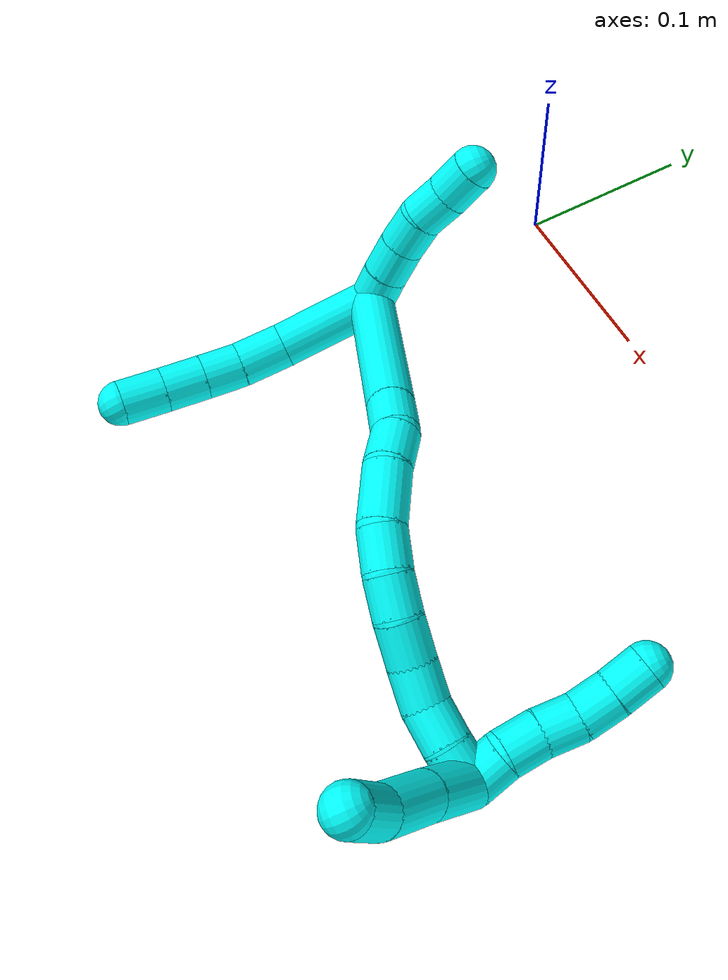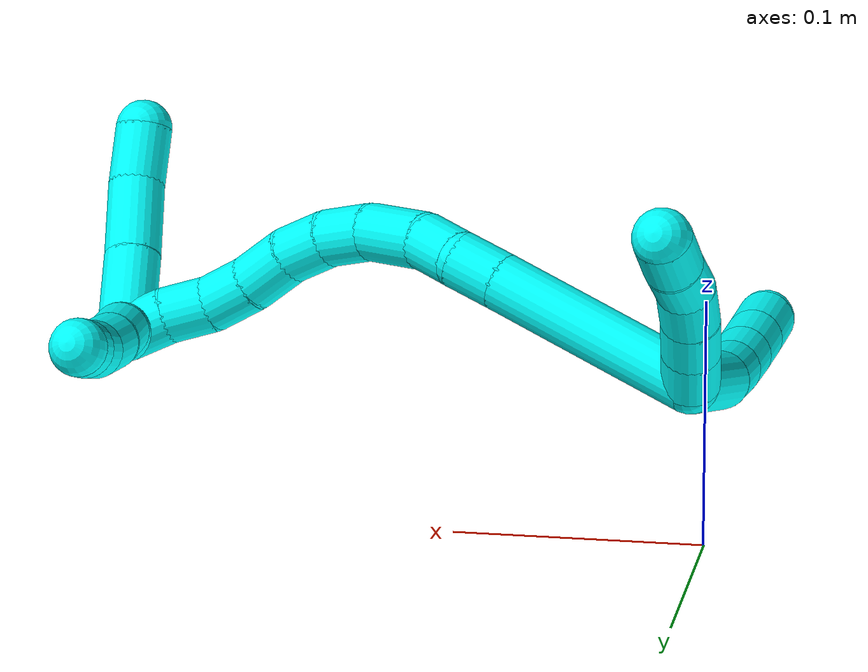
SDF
<sdf version="1.7">
 <world name="default">
  <model name="3">
   <static>0</static>
   <link name="3">
    <collision name="collision-cylinder-e_1_2_8">
     <pose>0.002585 0.004782 0.027011 -0.175232 0.093973 -0.008261</pose>
     <geometry><cylinder><radius>0.0125</radius><length>0.055106</length></cylinder></geometry>
     <surface>
      <friction><ode><mu>1.16</mu><mu2>1.16</mu2><slip1>0</slip1><slip2>0</slip2></ode></friction>
      <contact><ode><kp>1e+06</kp><kd>1</kd><max_vel>0</max_vel><min_depth>0.001</min_depth></ode></contact>
     </surface>
    </collision>
    <visual name="visual-cylinder-e_1_2_8">
     <pose>0.002585 0.004782 0.027011 -0.175232 0.093973 -0.008261</pose>
     <geometry><cylinder><radius>0.0125</radius><length>0.055106</length></cylinder></geometry>
     <material><ambient>0.003922 1 0.996078 1</ambient></material>
    </visual>
    <collision name="collision-cylinder-e_2_8_9">
     <pose>0.007182 0.013739 0.066417 -0.32485 0.152571 -0.025049</pose>
     <geometry><cylinder><radius>0.0125</radius><length>0.026464</length></cylinder></geometry>
     <surface>
      <friction><ode><mu>1.16</mu><mu2>1.16</mu2><slip1>0</slip1><slip2>0</slip2></ode></friction>
      <contact><ode><kp>1e+06</kp><kd>1</kd><max_vel>0</max_vel><min_depth>0.001</min_depth></ode></contact>
     </surface>
    </collision>
    <visual name="visual-cylinder-e_2_8_9">
     <pose>0.007182 0.013739 0.066417 -0.32485 0.152571 -0.025049</pose>
     <geometry><cylinder><radius>0.0125</radius><length>0.026464</length></cylinder></geometry>
     <material><ambient>0.003922 1 0.996078 1</ambient></material>
    </visual>
    <collision name="collision-cylinder-e_3_9_10">
     <pose>0.01038 0.02252 0.088375 -0.448943 0.111352 -0.025449</pose>
     <geometry><cylinder><radius>0.0125</radius><length>0.021363</length></cylinder></geometry>
     <surface>
      <friction><ode><mu>1.16</mu><mu2>1.16</mu2><slip1>0</slip1><slip2>0</slip2></ode></friction>
      <contact><ode><kp>1e+06</kp><kd>1</kd><max_vel>0</max_vel><min_depth>0.001</min_depth></ode></contact>
     </surface>
    </collision>
    <visual name="visual-cylinder-e_3_9_10">
     <pose>0.01038 0.02252 0.088375 -0.448943 0.111352 -0.025449</pose>
     <geometry><cylinder><radius>0.0125</radius><length>0.021363</length></cylinder></geometry>
     <material><ambient>0.003922 1 0.996078 1</ambient></material>
    </visual>
    <collision name="collision-cylinder-e_4_10_11">
     <pose>0.01291 0.032308 0.108021 -0.474625 0.117934 -0.028556</pose>
     <geometry><cylinder><radius>0.0125</radius><length>0.022829</length></cylinder></geometry>
     <surface>
      <friction><ode><mu>1.16</mu><mu2>1.16</mu2><slip1>0</slip1><slip2>0</slip2></ode></friction>
      <contact><ode><kp>1e+06</kp><kd>1</kd><max_vel>0</max_vel><min_depth>0.001</min_depth></ode></contact>
     </surface>
    </collision>
    <visual name="visual-cylinder-e_4_10_11">
     <pose>0.01291 0.032308 0.108021 -0.474625 0.117934 -0.028556</pose>
     <geometry><cylinder><radius>0.0125</radius><length>0.022829</length></cylinder></geometry>
     <material><ambient>0.003922 1 0.996078 1</ambient></material>
    </visual>
    <collision name="collision-cylinder-e_5_11_6">
     <pose>0.015657 0.043206 0.128695 -0.495042 0.116119 -0.029375</pose>
     <geometry><cylinder><radius>0.0125</radius><length>0.024238</length></cylinder></geometry>
     <surface>
      <friction><ode><mu>1.16</mu><mu2>1.16</mu2><slip1>0</slip1><slip2>0</slip2></ode></friction>
      <contact><ode><kp>1e+06</kp><kd>1</kd><max_vel>0</max_vel><min_depth>0.001</min_depth></ode></contact>
     </surface>
    </collision>
    <visual name="visual-cylinder-e_5_11_6">
     <pose>0.015657 0.043206 0.128695 -0.495042 0.116119 -0.029375</pose>
     <geometry><cylinder><radius>0.0125</radius><length>0.024238</length></cylinder></geometry>
     <material><ambient>0.003922 1 0.996078 1</ambient></material>
    </visual>
    <collision name="collision-cylinder-e_1_2_12">
     <pose>-0.001732 0.005733 -0.008009 -2.52034 -0.174079 0.530821</pose>
     <geometry><cylinder><radius>0.0125</radius><length>0.02</length></cylinder></geometry>
     <surface>
      <friction><ode><mu>1.16</mu><mu2>1.16</mu2><slip1>0</slip1><slip2>0</slip2></ode></friction>
      <contact><ode><kp>1e+06</kp><kd>1</kd><max_vel>0</max_vel><min_depth>0.001</min_depth></ode></contact>
     </surface>
    </collision>
    <visual name="visual-cylinder-e_1_2_12">
     <pose>-0.001732 0.005733 -0.008009 -2.52034 -0.174079 0.530821</pose>
     <geometry><cylinder><radius>0.0125</radius><length>0.02</length></cylinder></geometry>
     <material><ambient>0.003922 1 0.996078 1</ambient></material>
    </visual>
    <collision name="collision-cylinder-e_2_12_13">
     <pose>-0.005142 0.016802 -0.024306 -2.56952 -0.168555 0.55942</pose>
     <geometry><cylinder><radius>0.0125</radius><length>0.02</length></cylinder></geometry>
     <surface>
      <friction><ode><mu>1.16</mu><mu2>1.16</mu2><slip1>0</slip1><slip2>0</slip2></ode></friction>
      <contact><ode><kp>1e+06</kp><kd>1</kd><max_vel>0</max_vel><min_depth>0.001</min_depth></ode></contact>
     </surface>
    </collision>
    <visual name="visual-cylinder-e_2_12_13">
     <pose>-0.005142 0.016802 -0.024306 -2.56952 -0.168555 0.55942</pose>
     <geometry><cylinder><radius>0.0125</radius><length>0.02</length></cylinder></geometry>
     <material><ambient>0.003922 1 0.996078 1</ambient></material>
    </visual>
    <collision name="collision-cylinder-e_3_13_14">
     <pose>-0.007652 0.027414 -0.041049 -2.58377 -0.08336 0.289222</pose>
     <geometry><cylinder><radius>0.0125</radius><length>0.02</length></cylinder></geometry>
     <surface>
      <friction><ode><mu>1.16</mu><mu2>1.16</mu2><slip1>0</slip1><slip2>0</slip2></ode></friction>
      <contact><ode><kp>1e+06</kp><kd>1</kd><max_vel>0</max_vel><min_depth>0.001</min_depth></ode></contact>
     </surface>
    </collision>
    <visual name="visual-cylinder-e_3_13_14">
     <pose>-0.007652 0.027414 -0.041049 -2.58377 -0.08336 0.289222</pose>
     <geometry><cylinder><radius>0.0125</radius><length>0.02</length></cylinder></geometry>
     <material><ambient>0.003922 1 0.996078 1</ambient></material>
    </visual>
    <collision name="collision-cylinder-e_4_14_15">
     <pose>-0.008446 0.035704 -0.059039 -2.83537 0.003881 -0.025151</pose>
     <geometry><cylinder><radius>0.0125</radius><length>0.02</length></cylinder></geometry>
     <surface>
      <friction><ode><mu>1.16</mu><mu2>1.16</mu2><slip1>0</slip1><slip2>0</slip2></ode></friction>
      <contact><ode><kp>1e+06</kp><kd>1</kd><max_vel>0</max_vel><min_depth>0.001</min_depth></ode></contact>
     </surface>
    </collision>
    <visual name="visual-cylinder-e_4_14_15">
     <pose>-0.008446 0.035704 -0.059039 -2.83537 0.003881 -0.025151</pose>
     <geometry><cylinder><radius>0.0125</radius><length>0.02</length></cylinder></geometry>
     <material><ambient>0.003922 1 0.996078 1</ambient></material>
    </visual>
    <collision name="collision-cylinder-e_5_15_5">
     <pose>-0.008313 0.0428 -0.077702 -2.72111 0.009359 -0.04385</pose>
     <geometry><cylinder><radius>0.0125</radius><length>0.02</length></cylinder></geometry>
     <surface>
      <friction><ode><mu>1.16</mu><mu2>1.16</mu2><slip1>0</slip1><slip2>0</slip2></ode></friction>
      <contact><ode><kp>1e+06</kp><kd>1</kd><max_vel>0</max_vel><min_depth>0.001</min_depth></ode></contact>
     </surface>
    </collision>
    <visual name="visual-cylinder-e_5_15_5">
     <pose>-0.008313 0.0428 -0.077702 -2.72111 0.009359 -0.04385</pose>
     <geometry><cylinder><radius>0.0125</radius><length>0.02</length></cylinder></geometry>
     <material><ambient>0.003922 1 0.996078 1</ambient></material>
    </visual>
    <collision name="collision-cylinder-e_1_2_16">
     <pose>0.044908 0.016902 0.000395 -1.5474 1.21073 -1.18893</pose>
     <geometry><cylinder><radius>0.0125</radius><length>0.09597</length></cylinder></geometry>
     <surface>
      <friction><ode><mu>1.16</mu><mu2>1.16</mu2><slip1>0</slip1><slip2>0</slip2></ode></friction>
      <contact><ode><kp>1e+06</kp><kd>1</kd><max_vel>0</max_vel><min_depth>0.001</min_depth></ode></contact>
     </surface>
    </collision>
    <visual name="visual-cylinder-e_1_2_16">
     <pose>0.044908 0.016902 0.000395 -1.5474 1.21073 -1.18893</pose>
     <geometry><cylinder><radius>0.0125</radius><length>0.09597</length></cylinder></geometry>
     <material><ambient>0.003922 1 0.996078 1</ambient></material>
    </visual>
    <collision name="collision-cylinder-e_2_16_17">
     <pose>0.100173 0.037572 0.001021 -1.50981 1.22131 -1.1646</pose>
     <geometry><cylinder><radius>0.0125</radius><length>0.022046</length></cylinder></geometry>
     <surface>
      <friction><ode><mu>1.16</mu><mu2>1.16</mu2><slip1>0</slip1><slip2>0</slip2></ode></friction>
      <contact><ode><kp>1e+06</kp><kd>1</kd><max_vel>0</max_vel><min_depth>0.001</min_depth></ode></contact>
     </surface>
    </collision>
    <visual name="visual-cylinder-e_2_16_17">
     <pose>0.100173 0.037572 0.001021 -1.50981 1.22131 -1.1646</pose>
     <geometry><cylinder><radius>0.0125</radius><length>0.022046</length></cylinder></geometry>
     <material><ambient>0.003922 1 0.996078 1</ambient></material>
    </visual>
    <collision name="collision-cylinder-e_3_17_18">
     <pose>0.120111 0.04494 0.005021 -0.762364 1.07248 -0.467679</pose>
     <geometry><cylinder><radius>0.0125</radius><length>0.021816</length></cylinder></geometry>
     <surface>
      <friction><ode><mu>1.16</mu><mu2>1.16</mu2><slip1>0</slip1><slip2>0</slip2></ode></friction>
      <contact><ode><kp>1e+06</kp><kd>1</kd><max_vel>0</max_vel><min_depth>0.001</min_depth></ode></contact>
     </surface>
    </collision>
    <visual name="visual-cylinder-e_3_17_18">
     <pose>0.120111 0.04494 0.005021 -0.762364 1.07248 -0.467679</pose>
     <geometry><cylinder><radius>0.0125</radius><length>0.021816</length></cylinder></geometry>
     <material><ambient>0.003922 1 0.996078 1</ambient></material>
    </visual>
    <collision name="collision-cylinder-e_4_18_19">
     <pose>0.144453 0.050051 0.014476 -0.259803 1.19163 -0.176686</pose>
     <geometry><cylinder><radius>0.0125</radius><length>0.031778</length></cylinder></geometry>
     <surface>
      <friction><ode><mu>1.16</mu><mu2>1.16</mu2><slip1>0</slip1><slip2>0</slip2></ode></friction>
      <contact><ode><kp>1e+06</kp><kd>1</kd><max_vel>0</max_vel><min_depth>0.001</min_depth></ode></contact>
     </surface>
    </collision>
    <visual name="visual-cylinder-e_4_18_19">
     <pose>0.144453 0.050051 0.014476 -0.259803 1.19163 -0.176686</pose>
     <geometry><cylinder><radius>0.0125</radius><length>0.031778</length></cylinder></geometry>
     <material><ambient>0.003922 1 0.996078 1</ambient></material>
    </visual>
    <collision name="collision-cylinder-e_5_19_20">
     <pose>0.169866 0.049575 0.02291 0.625727 1.26242 0.464389</pose>
     <geometry><cylinder><radius>0.0125</radius><length>0.022361</length></cylinder></geometry>
     <surface>
      <friction><ode><mu>1.16</mu><mu2>1.16</mu2><slip1>0</slip1><slip2>0</slip2></ode></friction>
      <contact><ode><kp>1e+06</kp><kd>1</kd><max_vel>0</max_vel><min_depth>0.001</min_depth></ode></contact>
     </surface>
    </collision>
    <visual name="visual-cylinder-e_5_19_20">
     <pose>0.169866 0.049575 0.02291 0.625727 1.26242 0.464389</pose>
     <geometry><cylinder><radius>0.0125</radius><length>0.022361</length></cylinder></geometry>
     <material><ambient>0.003922 1 0.996078 1</ambient></material>
    </visual>
    <collision name="collision-cylinder-e_6_20_21">
     <pose>0.189898 0.043289 0.027978 1.07637 1.0908 0.695066</pose>
     <geometry><cylinder><radius>0.0125</radius><length>0.021148</length></cylinder></geometry>
     <surface>
      <friction><ode><mu>1.16</mu><mu2>1.16</mu2><slip1>0</slip1><slip2>0</slip2></ode></friction>
      <contact><ode><kp>1e+06</kp><kd>1</kd><max_vel>0</max_vel><min_depth>0.001</min_depth></ode></contact>
     </surface>
    </collision>
    <visual name="visual-cylinder-e_6_20_21">
     <pose>0.189898 0.043289 0.027978 1.07637 1.0908 0.695066</pose>
     <geometry><cylinder><radius>0.0125</radius><length>0.021148</length></cylinder></geometry>
     <material><ambient>0.003922 1 0.996078 1</ambient></material>
    </visual>
    <collision name="collision-cylinder-e_7_21_22">
     <pose>0.208046 0.032331 0.032714 1.22233 0.891135 0.645836</pose>
     <geometry><cylinder><radius>0.0125</radius><length>0.022549</length></cylinder></geometry>
     <surface>
      <friction><ode><mu>1.16</mu><mu2>1.16</mu2><slip1>0</slip1><slip2>0</slip2></ode></friction>
      <contact><ode><kp>1e+06</kp><kd>1</kd><max_vel>0</max_vel><min_depth>0.001</min_depth></ode></contact>
     </surface>
    </collision>
    <visual name="visual-cylinder-e_7_21_22">
     <pose>0.208046 0.032331 0.032714 1.22233 0.891135 0.645836</pose>
     <geometry><cylinder><radius>0.0125</radius><length>0.022549</length></cylinder></geometry>
     <material><ambient>0.003922 1 0.996078 1</ambient></material>
    </visual>
    <collision name="collision-cylinder-e_8_22_23">
     <pose>0.226013 0.020409 0.036825 1.25974 1.02979 0.782336</pose>
     <geometry><cylinder><radius>0.0125</radius><length>0.021461</length></cylinder></geometry>
     <surface>
      <friction><ode><mu>1.16</mu><mu2>1.16</mu2><slip1>0</slip1><slip2>0</slip2></ode></friction>
      <contact><ode><kp>1e+06</kp><kd>1</kd><max_vel>0</max_vel><min_depth>0.001</min_depth></ode></contact>
     </surface>
    </collision>
    <visual name="visual-cylinder-e_8_22_23">
     <pose>0.226013 0.020409 0.036825 1.25974 1.02979 0.782336</pose>
     <geometry><cylinder><radius>0.0125</radius><length>0.021461</length></cylinder></geometry>
     <material><ambient>0.003922 1 0.996078 1</ambient></material>
    </visual>
    <collision name="collision-cylinder-e_9_23_24">
     <pose>0.244773 0.011428 0.037698 1.78734 1.19171 1.40136</pose>
     <geometry><cylinder><radius>0.0125</radius><length>0.020586</length></cylinder></geometry>
     <surface>
      <friction><ode><mu>1.16</mu><mu2>1.16</mu2><slip1>0</slip1><slip2>0</slip2></ode></friction>
      <contact><ode><kp>1e+06</kp><kd>1</kd><max_vel>0</max_vel><min_depth>0.001</min_depth></ode></contact>
     </surface>
    </collision>
    <visual name="visual-cylinder-e_9_23_24">
     <pose>0.244773 0.011428 0.037698 1.78734 1.19171 1.40136</pose>
     <geometry><cylinder><radius>0.0125</radius><length>0.020586</length></cylinder></geometry>
     <material><ambient>0.003922 1 0.996078 1</ambient></material>
    </visual>
    <collision name="collision-cylinder-e_10_24_1">
     <pose>0.263083 0.002652 0.035992 1.74469 1.04011 1.19709</pose>
     <geometry><cylinder><radius>0.0125</radius><length>0.020286</length></cylinder></geometry>
     <surface>
      <friction><ode><mu>1.16</mu><mu2>1.16</mu2><slip1>0</slip1><slip2>0</slip2></ode></friction>
      <contact><ode><kp>1e+06</kp><kd>1</kd><max_vel>0</max_vel><min_depth>0.001</min_depth></ode></contact>
     </surface>
    </collision>
    <visual name="visual-cylinder-e_10_24_1">
     <pose>0.263083 0.002652 0.035992 1.74469 1.04011 1.19709</pose>
     <geometry><cylinder><radius>0.0125</radius><length>0.020286</length></cylinder></geometry>
     <material><ambient>0.003922 1 0.996078 1</ambient></material>
    </visual>
    <collision name="collision-cylinder-e_1_1_25">
     <pose>0.275735 0.015214 0.040762 -1.26 0.207907 -0.151845</pose>
     <geometry><cylinder><radius>0.0125</radius><length>0.037824</length></cylinder></geometry>
     <surface>
      <friction><ode><mu>1.16</mu><mu2>1.16</mu2><slip1>0</slip1><slip2>0</slip2></ode></friction>
      <contact><ode><kp>1e+06</kp><kd>1</kd><max_vel>0</max_vel><min_depth>0.001</min_depth></ode></contact>
     </surface>
    </collision>
    <visual name="visual-cylinder-e_1_1_25">
     <pose>0.275735 0.015214 0.040762 -1.26 0.207907 -0.151845</pose>
     <geometry><cylinder><radius>0.0125</radius><length>0.037824</length></cylinder></geometry>
     <material><ambient>0.003922 1 0.996078 1</ambient></material>
    </visual>
    <collision name="collision-cylinder-e_2_25_26">
     <pose>0.283891 0.049419 0.051717 -1.26179 0.239509 -0.175349</pose>
     <geometry><cylinder><radius>0.0125</radius><length>0.035848</length></cylinder></geometry>
     <surface>
      <friction><ode><mu>1.16</mu><mu2>1.16</mu2><slip1>0</slip1><slip2>0</slip2></ode></friction>
      <contact><ode><kp>1e+06</kp><kd>1</kd><max_vel>0</max_vel><min_depth>0.001</min_depth></ode></contact>
     </surface>
    </collision>
    <visual name="visual-cylinder-e_2_25_26">
     <pose>0.283891 0.049419 0.051717 -1.26179 0.239509 -0.175349</pose>
     <geometry><cylinder><radius>0.0125</radius><length>0.035848</length></cylinder></geometry>
     <material><ambient>0.003922 1 0.996078 1</ambient></material>
    </visual>
    <collision name="collision-cylinder-e_3_26_4">
     <pose>0.289164 0.079081 0.058157 -1.48344 0.077682 -0.071181</pose>
     <geometry><cylinder><radius>0.0125</radius><length>0.026328</length></cylinder></geometry>
     <surface>
      <friction><ode><mu>1.16</mu><mu2>1.16</mu2><slip1>0</slip1><slip2>0</slip2></ode></friction>
      <contact><ode><kp>1e+06</kp><kd>1</kd><max_vel>0</max_vel><min_depth>0.001</min_depth></ode></contact>
     </surface>
    </collision>
    <visual name="visual-cylinder-e_3_26_4">
     <pose>0.289164 0.079081 0.058157 -1.48344 0.077682 -0.071181</pose>
     <geometry><cylinder><radius>0.0125</radius><length>0.026328</length></cylinder></geometry>
     <material><ambient>0.003922 1 0.996078 1</ambient></material>
    </visual>
    <collision name="collision-cylinder-e_1_1_27">
     <pose>0.268774 -0.003015 0.025602 3.07744 -0.310747 -2.73745</pose>
     <geometry><cylinder><radius>0.0125</radius><length>0.02</length></cylinder></geometry>
     <surface>
      <friction><ode><mu>1.16</mu><mu2>1.16</mu2><slip1>0</slip1><slip2>0</slip2></ode></friction>
      <contact><ode><kp>1e+06</kp><kd>1</kd><max_vel>0</max_vel><min_depth>0.001</min_depth></ode></contact>
     </surface>
    </collision>
    <visual name="visual-cylinder-e_1_1_27">
     <pose>0.268774 -0.003015 0.025602 3.07744 -0.310747 -2.73745</pose>
     <geometry><cylinder><radius>0.0125</radius><length>0.02</length></cylinder></geometry>
     <material><ambient>0.003922 1 0.996078 1</ambient></material>
    </visual>
    <collision name="collision-cylinder-e_2_27_28">
     <pose>0.263505 -0.007133 0.007001 2.77368 -0.222918 -1.0831</pose>
     <geometry><cylinder><radius>0.0125</radius><length>0.02</length></cylinder></geometry>
     <surface>
      <friction><ode><mu>1.16</mu><mu2>1.16</mu2><slip1>0</slip1><slip2>0</slip2></ode></friction>
      <contact><ode><kp>1e+06</kp><kd>1</kd><max_vel>0</max_vel><min_depth>0.001</min_depth></ode></contact>
     </surface>
    </collision>
    <visual name="visual-cylinder-e_2_27_28">
     <pose>0.263505 -0.007133 0.007001 2.77368 -0.222918 -1.0831</pose>
     <geometry><cylinder><radius>0.0125</radius><length>0.02</length></cylinder></geometry>
     <material><ambient>0.003922 1 0.996078 1</ambient></material>
    </visual>
    <collision name="collision-cylinder-e_3_28_29">
     <pose>0.260452 -0.013952 -0.011497 2.80283 -0.084358 -0.483886</pose>
     <geometry><cylinder><radius>0.0125</radius><length>0.02</length></cylinder></geometry>
     <surface>
      <friction><ode><mu>1.16</mu><mu2>1.16</mu2><slip1>0</slip1><slip2>0</slip2></ode></friction>
      <contact><ode><kp>1e+06</kp><kd>1</kd><max_vel>0</max_vel><min_depth>0.001</min_depth></ode></contact>
     </surface>
    </collision>
    <visual name="visual-cylinder-e_3_28_29">
     <pose>0.260452 -0.013952 -0.011497 2.80283 -0.084358 -0.483886</pose>
     <geometry><cylinder><radius>0.0125</radius><length>0.02</length></cylinder></geometry>
     <material><ambient>0.003922 1 0.996078 1</ambient></material>
    </visual>
    <collision name="collision-cylinder-e_4_29_30">
     <pose>0.257459 -0.018454 -0.030589 3.01939 -0.216674 -2.11684</pose>
     <geometry><cylinder><radius>0.0125</radius><length>0.02</length></cylinder></geometry>
     <surface>
      <friction><ode><mu>1.16</mu><mu2>1.16</mu2><slip1>0</slip1><slip2>0</slip2></ode></friction>
      <contact><ode><kp>1e+06</kp><kd>1</kd><max_vel>0</max_vel><min_depth>0.001</min_depth></ode></contact>
     </surface>
    </collision>
    <visual name="visual-cylinder-e_4_29_30">
     <pose>0.257459 -0.018454 -0.030589 3.01939 -0.216674 -2.11684</pose>
     <geometry><cylinder><radius>0.0125</radius><length>0.02</length></cylinder></geometry>
     <material><ambient>0.003922 1 0.996078 1</ambient></material>
    </visual>
    <collision name="collision-cylinder-e_5_30_3">
     <pose>0.252524 -0.02054 -0.049845 3.04821 -0.282296 -2.50621</pose>
     <geometry><cylinder><radius>0.0125</radius><length>0.02</length></cylinder></geometry>
     <surface>
      <friction><ode><mu>1.16</mu><mu2>1.16</mu2><slip1>0</slip1><slip2>0</slip2></ode></friction>
      <contact><ode><kp>1e+06</kp><kd>1</kd><max_vel>0</max_vel><min_depth>0.001</min_depth></ode></contact>
     </surface>
    </collision>
    <visual name="visual-cylinder-e_5_30_3">
     <pose>0.252524 -0.02054 -0.049845 3.04821 -0.282296 -2.50621</pose>
     <geometry><cylinder><radius>0.0125</radius><length>0.02</length></cylinder></geometry>
     <material><ambient>0.003922 1 0.996078 1</ambient></material>
    </visual>
    <collision name="collision-sphere-3">
     <pose>0.249738 -0.021435 -0.059407 0 -0 0</pose>
     <geometry><sphere><radius>0.0125</radius></sphere></geometry>
     <surface>
      <friction><ode><mu>1.16</mu><mu2>1.16</mu2><slip1>0</slip1><slip2>0</slip2></ode></friction>
      <contact><ode><kp>1e+06</kp><kd>1</kd><max_vel>0</max_vel><min_depth>0.001</min_depth></ode></contact>
     </surface>
    </collision>
    <visual name="visual-sphere-3">
     <pose>0.249738 -0.021435 -0.059407 0 -0 0</pose>
     <geometry><sphere><radius>0.0125</radius></sphere></geometry>
     <material><ambient>0.003922 1 0.996078 1</ambient></material>
    </visual>
    <collision name="collision-sphere-30">
     <pose>0.255309 -0.019644 -0.040282 0 -0 0</pose>
     <geometry><sphere><radius>0.0125</radius></sphere></geometry>
     <surface>
      <friction><ode><mu>1.16</mu><mu2>1.16</mu2><slip1>0</slip1><slip2>0</slip2></ode></friction>
      <contact><ode><kp>1e+06</kp><kd>1</kd><max_vel>0</max_vel><min_depth>0.001</min_depth></ode></contact>
     </surface>
    </collision>
    <visual name="visual-sphere-30">
     <pose>0.255309 -0.019644 -0.040282 0 -0 0</pose>
     <geometry><sphere><radius>0.0125</radius></sphere></geometry>
     <material><ambient>0.003922 1 0.996078 1</ambient></material>
    </visual>
    <collision name="collision-sphere-29">
     <pose>0.259609 -0.017263 -0.020896 0 -0 0</pose>
     <geometry><sphere><radius>0.0125</radius></sphere></geometry>
     <surface>
      <friction><ode><mu>1.16</mu><mu2>1.16</mu2><slip1>0</slip1><slip2>0</slip2></ode></friction>
      <contact><ode><kp>1e+06</kp><kd>1</kd><max_vel>0</max_vel><min_depth>0.001</min_depth></ode></contact>
     </surface>
    </collision>
    <visual name="visual-sphere-29">
     <pose>0.259609 -0.017263 -0.020896 0 -0 0</pose>
     <geometry><sphere><radius>0.0125</radius></sphere></geometry>
     <material><ambient>0.003922 1 0.996078 1</ambient></material>
    </visual>
    <collision name="collision-sphere-28">
     <pose>0.261294 -0.010641 -0.002099 0 -0 0</pose>
     <geometry><sphere><radius>0.0125</radius></sphere></geometry>
     <surface>
      <friction><ode><mu>1.16</mu><mu2>1.16</mu2><slip1>0</slip1><slip2>0</slip2></ode></friction>
      <contact><ode><kp>1e+06</kp><kd>1</kd><max_vel>0</max_vel><min_depth>0.001</min_depth></ode></contact>
     </surface>
    </collision>
    <visual name="visual-sphere-28">
     <pose>0.261294 -0.010641 -0.002099 0 -0 0</pose>
     <geometry><sphere><radius>0.0125</radius></sphere></geometry>
     <material><ambient>0.003922 1 0.996078 1</ambient></material>
    </visual>
    <collision name="collision-sphere-27">
     <pose>0.265716 -0.003625 0.016101 0 -0 0</pose>
     <geometry><sphere><radius>0.0125</radius></sphere></geometry>
     <surface>
      <friction><ode><mu>1.16</mu><mu2>1.16</mu2><slip1>0</slip1><slip2>0</slip2></ode></friction>
      <contact><ode><kp>1e+06</kp><kd>1</kd><max_vel>0</max_vel><min_depth>0.001</min_depth></ode></contact>
     </surface>
    </collision>
    <visual name="visual-sphere-27">
     <pose>0.265716 -0.003625 0.016101 0 -0 0</pose>
     <geometry><sphere><radius>0.0125</radius></sphere></geometry>
     <material><ambient>0.003922 1 0.996078 1</ambient></material>
    </visual>
    <collision name="collision-sphere-4">
     <pose>0.290186 0.092156 0.059302 0 -0 0</pose>
     <geometry><sphere><radius>0.0125</radius></sphere></geometry>
     <surface>
      <friction><ode><mu>1.16</mu><mu2>1.16</mu2><slip1>0</slip1><slip2>0</slip2></ode></friction>
      <contact><ode><kp>1e+06</kp><kd>1</kd><max_vel>0</max_vel><min_depth>0.001</min_depth></ode></contact>
     </surface>
    </collision>
    <visual name="visual-sphere-4">
     <pose>0.290186 0.092156 0.059302 0 -0 0</pose>
     <geometry><sphere><radius>0.0125</radius></sphere></geometry>
     <material><ambient>0.003922 1 0.996078 1</ambient></material>
    </visual>
    <collision name="collision-sphere-26">
     <pose>0.288143 0.066007 0.057012 0 -0 0</pose>
     <geometry><sphere><radius>0.0125</radius></sphere></geometry>
     <surface>
      <friction><ode><mu>1.16</mu><mu2>1.16</mu2><slip1>0</slip1><slip2>0</slip2></ode></friction>
      <contact><ode><kp>1e+06</kp><kd>1</kd><max_vel>0</max_vel><min_depth>0.001</min_depth></ode></contact>
     </surface>
    </collision>
    <visual name="visual-sphere-26">
     <pose>0.288143 0.066007 0.057012 0 -0 0</pose>
     <geometry><sphere><radius>0.0125</radius></sphere></geometry>
     <material><ambient>0.003922 1 0.996078 1</ambient></material>
    </visual>
    <collision name="collision-sphere-25">
     <pose>0.279639 0.032832 0.046421 0 -0 0</pose>
     <geometry><sphere><radius>0.0125</radius></sphere></geometry>
     <surface>
      <friction><ode><mu>1.16</mu><mu2>1.16</mu2><slip1>0</slip1><slip2>0</slip2></ode></friction>
      <contact><ode><kp>1e+06</kp><kd>1</kd><max_vel>0</max_vel><min_depth>0.001</min_depth></ode></contact>
     </surface>
    </collision>
    <visual name="visual-sphere-25">
     <pose>0.279639 0.032832 0.046421 0 -0 0</pose>
     <geometry><sphere><radius>0.0125</radius></sphere></geometry>
     <material><ambient>0.003922 1 0.996078 1</ambient></material>
    </visual>
    <collision name="collision-sphere-1">
     <pose>0.271831 -0.002404 0.035103 0 -0 0</pose>
     <geometry><sphere><radius>0.0125</radius></sphere></geometry>
     <surface>
      <friction><ode><mu>1.16</mu><mu2>1.16</mu2><slip1>0</slip1><slip2>0</slip2></ode></friction>
      <contact><ode><kp>1e+06</kp><kd>1</kd><max_vel>0</max_vel><min_depth>0.001</min_depth></ode></contact>
     </surface>
    </collision>
    <visual name="visual-sphere-1">
     <pose>0.271831 -0.002404 0.035103 0 -0 0</pose>
     <geometry><sphere><radius>0.0125</radius></sphere></geometry>
     <material><ambient>0.003922 1 0.996078 1</ambient></material>
    </visual>
    <collision name="collision-sphere-24">
     <pose>0.254335 0.007708 0.03688 0 -0 0</pose>
     <geometry><sphere><radius>0.0125</radius></sphere></geometry>
     <surface>
      <friction><ode><mu>1.16</mu><mu2>1.16</mu2><slip1>0</slip1><slip2>0</slip2></ode></friction>
      <contact><ode><kp>1e+06</kp><kd>1</kd><max_vel>0</max_vel><min_depth>0.001</min_depth></ode></contact>
     </surface>
    </collision>
    <visual name="visual-sphere-24">
     <pose>0.254335 0.007708 0.03688 0 -0 0</pose>
     <geometry><sphere><radius>0.0125</radius></sphere></geometry>
     <material><ambient>0.003922 1 0.996078 1</ambient></material>
    </visual>
    <collision name="collision-sphere-23">
     <pose>0.235211 0.015148 0.038517 0 -0 0</pose>
     <geometry><sphere><radius>0.0125</radius></sphere></geometry>
     <surface>
      <friction><ode><mu>1.16</mu><mu2>1.16</mu2><slip1>0</slip1><slip2>0</slip2></ode></friction>
      <contact><ode><kp>1e+06</kp><kd>1</kd><max_vel>0</max_vel><min_depth>0.001</min_depth></ode></contact>
     </surface>
    </collision>
    <visual name="visual-sphere-23">
     <pose>0.235211 0.015148 0.038517 0 -0 0</pose>
     <geometry><sphere><radius>0.0125</radius></sphere></geometry>
     <material><ambient>0.003922 1 0.996078 1</ambient></material>
    </visual>
    <collision name="collision-sphere-22">
     <pose>0.216815 0.02567 0.035134 0 -0 0</pose>
     <geometry><sphere><radius>0.0125</radius></sphere></geometry>
     <surface>
      <friction><ode><mu>1.16</mu><mu2>1.16</mu2><slip1>0</slip1><slip2>0</slip2></ode></friction>
      <contact><ode><kp>1e+06</kp><kd>1</kd><max_vel>0</max_vel><min_depth>0.001</min_depth></ode></contact>
     </surface>
    </collision>
    <visual name="visual-sphere-22">
     <pose>0.216815 0.02567 0.035134 0 -0 0</pose>
     <geometry><sphere><radius>0.0125</radius></sphere></geometry>
     <material><ambient>0.003922 1 0.996078 1</ambient></material>
    </visual>
    <collision name="collision-sphere-21">
     <pose>0.199277 0.038991 0.030295 0 -0 0</pose>
     <geometry><sphere><radius>0.0125</radius></sphere></geometry>
     <surface>
      <friction><ode><mu>1.16</mu><mu2>1.16</mu2><slip1>0</slip1><slip2>0</slip2></ode></friction>
      <contact><ode><kp>1e+06</kp><kd>1</kd><max_vel>0</max_vel><min_depth>0.001</min_depth></ode></contact>
     </surface>
    </collision>
    <visual name="visual-sphere-21">
     <pose>0.199277 0.038991 0.030295 0 -0 0</pose>
     <geometry><sphere><radius>0.0125</radius></sphere></geometry>
     <material><ambient>0.003922 1 0.996078 1</ambient></material>
    </visual>
    <collision name="collision-sphere-6">
     <pose>0.017061 0.048925 0.139287 0 -0 0</pose>
     <geometry><sphere><radius>0.0125</radius></sphere></geometry>
     <surface>
      <friction><ode><mu>1.16</mu><mu2>1.16</mu2><slip1>0</slip1><slip2>0</slip2></ode></friction>
      <contact><ode><kp>1e+06</kp><kd>1</kd><max_vel>0</max_vel><min_depth>0.001</min_depth></ode></contact>
     </surface>
    </collision>
    <visual name="visual-sphere-6">
     <pose>0.017061 0.048925 0.139287 0 -0 0</pose>
     <geometry><sphere><radius>0.0125</radius></sphere></geometry>
     <material><ambient>0.003922 1 0.996078 1</ambient></material>
    </visual>
    <collision name="collision-sphere-11">
     <pose>0.014253 0.037488 0.118103 0 -0 0</pose>
     <geometry><sphere><radius>0.0125</radius></sphere></geometry>
     <surface>
      <friction><ode><mu>1.16</mu><mu2>1.16</mu2><slip1>0</slip1><slip2>0</slip2></ode></friction>
      <contact><ode><kp>1e+06</kp><kd>1</kd><max_vel>0</max_vel><min_depth>0.001</min_depth></ode></contact>
     </surface>
    </collision>
    <visual name="visual-sphere-11">
     <pose>0.014253 0.037488 0.118103 0 -0 0</pose>
     <geometry><sphere><radius>0.0125</radius></sphere></geometry>
     <material><ambient>0.003922 1 0.996078 1</ambient></material>
    </visual>
    <collision name="collision-sphere-10">
     <pose>0.011567 0.027127 0.097938 0 -0 0</pose>
     <geometry><sphere><radius>0.0125</radius></sphere></geometry>
     <surface>
      <friction><ode><mu>1.16</mu><mu2>1.16</mu2><slip1>0</slip1><slip2>0</slip2></ode></friction>
      <contact><ode><kp>1e+06</kp><kd>1</kd><max_vel>0</max_vel><min_depth>0.001</min_depth></ode></contact>
     </surface>
    </collision>
    <visual name="visual-sphere-10">
     <pose>0.011567 0.027127 0.097938 0 -0 0</pose>
     <geometry><sphere><radius>0.0125</radius></sphere></geometry>
     <material><ambient>0.003922 1 0.996078 1</ambient></material>
    </visual>
    <collision name="collision-sphere-9">
     <pose>0.009193 0.017913 0.078812 0 -0 0</pose>
     <geometry><sphere><radius>0.0125</radius></sphere></geometry>
     <surface>
      <friction><ode><mu>1.16</mu><mu2>1.16</mu2><slip1>0</slip1><slip2>0</slip2></ode></friction>
      <contact><ode><kp>1e+06</kp><kd>1</kd><max_vel>0</max_vel><min_depth>0.001</min_depth></ode></contact>
     </surface>
    </collision>
    <visual name="visual-sphere-9">
     <pose>0.009193 0.017913 0.078812 0 -0 0</pose>
     <geometry><sphere><radius>0.0125</radius></sphere></geometry>
     <material><ambient>0.003922 1 0.996078 1</ambient></material>
    </visual>
    <collision name="collision-sphere-2">
     <geometry><sphere><radius>0.0125</radius></sphere></geometry>
     <surface>
      <friction><ode><mu>1.16</mu><mu2>1.16</mu2><slip1>0</slip1><slip2>0</slip2></ode></friction>
      <contact><ode><kp>1e+06</kp><kd>1</kd><max_vel>0</max_vel><min_depth>0.001</min_depth></ode></contact>
     </surface>
    </collision>
    <visual name="visual-sphere-2">
     <geometry><sphere><radius>0.0125</radius></sphere></geometry>
     <material><ambient>0.003922 1 0.996078 1</ambient></material>
    </visual>
    <collision name="collision-sphere-19">
     <pose>0.159213 0.051562 0.02016 0 -0 0</pose>
     <geometry><sphere><radius>0.0125</radius></sphere></geometry>
     <surface>
      <friction><ode><mu>1.16</mu><mu2>1.16</mu2><slip1>0</slip1><slip2>0</slip2></ode></friction>
      <contact><ode><kp>1e+06</kp><kd>1</kd><max_vel>0</max_vel><min_depth>0.001</min_depth></ode></contact>
     </surface>
    </collision>
    <visual name="visual-sphere-19">
     <pose>0.159213 0.051562 0.02016 0 -0 0</pose>
     <geometry><sphere><radius>0.0125</radius></sphere></geometry>
     <material><ambient>0.003922 1 0.996078 1</ambient></material>
    </visual>
    <collision name="collision-sphere-8">
     <pose>0.005171 0.009565 0.054023 0 -0 0</pose>
     <geometry><sphere><radius>0.0125</radius></sphere></geometry>
     <surface>
      <friction><ode><mu>1.16</mu><mu2>1.16</mu2><slip1>0</slip1><slip2>0</slip2></ode></friction>
      <contact><ode><kp>1e+06</kp><kd>1</kd><max_vel>0</max_vel><min_depth>0.001</min_depth></ode></contact>
     </surface>
    </collision>
    <visual name="visual-sphere-8">
     <pose>0.005171 0.009565 0.054023 0 -0 0</pose>
     <geometry><sphere><radius>0.0125</radius></sphere></geometry>
     <material><ambient>0.003922 1 0.996078 1</ambient></material>
    </visual>
    <collision name="collision-sphere-12">
     <pose>-0.003464 0.011465 -0.016017 0 -0 0</pose>
     <geometry><sphere><radius>0.0125</radius></sphere></geometry>
     <surface>
      <friction><ode><mu>1.16</mu><mu2>1.16</mu2><slip1>0</slip1><slip2>0</slip2></ode></friction>
      <contact><ode><kp>1e+06</kp><kd>1</kd><max_vel>0</max_vel><min_depth>0.001</min_depth></ode></contact>
     </surface>
    </collision>
    <visual name="visual-sphere-12">
     <pose>-0.003464 0.011465 -0.016017 0 -0 0</pose>
     <geometry><sphere><radius>0.0125</radius></sphere></geometry>
     <material><ambient>0.003922 1 0.996078 1</ambient></material>
    </visual>
    <collision name="collision-sphere-13">
     <pose>-0.006819 0.022139 -0.032595 0 -0 0</pose>
     <geometry><sphere><radius>0.0125</radius></sphere></geometry>
     <surface>
      <friction><ode><mu>1.16</mu><mu2>1.16</mu2><slip1>0</slip1><slip2>0</slip2></ode></friction>
      <contact><ode><kp>1e+06</kp><kd>1</kd><max_vel>0</max_vel><min_depth>0.001</min_depth></ode></contact>
     </surface>
    </collision>
    <visual name="visual-sphere-13">
     <pose>-0.006819 0.022139 -0.032595 0 -0 0</pose>
     <geometry><sphere><radius>0.0125</radius></sphere></geometry>
     <material><ambient>0.003922 1 0.996078 1</ambient></material>
    </visual>
    <collision name="collision-sphere-14">
     <pose>-0.008484 0.032689 -0.049504 0 -0 0</pose>
     <geometry><sphere><radius>0.0125</radius></sphere></geometry>
     <surface>
      <friction><ode><mu>1.16</mu><mu2>1.16</mu2><slip1>0</slip1><slip2>0</slip2></ode></friction>
      <contact><ode><kp>1e+06</kp><kd>1</kd><max_vel>0</max_vel><min_depth>0.001</min_depth></ode></contact>
     </surface>
    </collision>
    <visual name="visual-sphere-14">
     <pose>-0.008484 0.032689 -0.049504 0 -0 0</pose>
     <geometry><sphere><radius>0.0125</radius></sphere></geometry>
     <material><ambient>0.003922 1 0.996078 1</ambient></material>
    </visual>
    <collision name="collision-sphere-15">
     <pose>-0.008407 0.038718 -0.068573 0 -0 0</pose>
     <geometry><sphere><radius>0.0125</radius></sphere></geometry>
     <surface>
      <friction><ode><mu>1.16</mu><mu2>1.16</mu2><slip1>0</slip1><slip2>0</slip2></ode></friction>
      <contact><ode><kp>1e+06</kp><kd>1</kd><max_vel>0</max_vel><min_depth>0.001</min_depth></ode></contact>
     </surface>
    </collision>
    <visual name="visual-sphere-15">
     <pose>-0.008407 0.038718 -0.068573 0 -0 0</pose>
     <geometry><sphere><radius>0.0125</radius></sphere></geometry>
     <material><ambient>0.003922 1 0.996078 1</ambient></material>
    </visual>
    <collision name="collision-sphere-5">
     <pose>-0.00822 0.046882 -0.08683 0 -0 0</pose>
     <geometry><sphere><radius>0.0125</radius></sphere></geometry>
     <surface>
      <friction><ode><mu>1.16</mu><mu2>1.16</mu2><slip1>0</slip1><slip2>0</slip2></ode></friction>
      <contact><ode><kp>1e+06</kp><kd>1</kd><max_vel>0</max_vel><min_depth>0.001</min_depth></ode></contact>
     </surface>
    </collision>
    <visual name="visual-sphere-5">
     <pose>-0.00822 0.046882 -0.08683 0 -0 0</pose>
     <geometry><sphere><radius>0.0125</radius></sphere></geometry>
     <material><ambient>0.003922 1 0.996078 1</ambient></material>
    </visual>
    <collision name="collision-sphere-16">
     <pose>0.089816 0.033804 0.000791 0 -0 0</pose>
     <geometry><sphere><radius>0.0125</radius></sphere></geometry>
     <surface>
      <friction><ode><mu>1.16</mu><mu2>1.16</mu2><slip1>0</slip1><slip2>0</slip2></ode></friction>
      <contact><ode><kp>1e+06</kp><kd>1</kd><max_vel>0</max_vel><min_depth>0.001</min_depth></ode></contact>
     </surface>
    </collision>
    <visual name="visual-sphere-16">
     <pose>0.089816 0.033804 0.000791 0 -0 0</pose>
     <geometry><sphere><radius>0.0125</radius></sphere></geometry>
     <material><ambient>0.003922 1 0.996078 1</ambient></material>
    </visual>
    <collision name="collision-sphere-17">
     <pose>0.110529 0.041339 0.001251 0 -0 0</pose>
     <geometry><sphere><radius>0.0125</radius></sphere></geometry>
     <surface>
      <friction><ode><mu>1.16</mu><mu2>1.16</mu2><slip1>0</slip1><slip2>0</slip2></ode></friction>
      <contact><ode><kp>1e+06</kp><kd>1</kd><max_vel>0</max_vel><min_depth>0.001</min_depth></ode></contact>
     </surface>
    </collision>
    <visual name="visual-sphere-17">
     <pose>0.110529 0.041339 0.001251 0 -0 0</pose>
     <geometry><sphere><radius>0.0125</radius></sphere></geometry>
     <material><ambient>0.003922 1 0.996078 1</ambient></material>
    </visual>
    <collision name="collision-sphere-18">
     <pose>0.129692 0.04854 0.008792 0 -0 0</pose>
     <geometry><sphere><radius>0.0125</radius></sphere></geometry>
     <surface>
      <friction><ode><mu>1.16</mu><mu2>1.16</mu2><slip1>0</slip1><slip2>0</slip2></ode></friction>
      <contact><ode><kp>1e+06</kp><kd>1</kd><max_vel>0</max_vel><min_depth>0.001</min_depth></ode></contact>
     </surface>
    </collision>
    <visual name="visual-sphere-18">
     <pose>0.129692 0.04854 0.008792 0 -0 0</pose>
     <geometry><sphere><radius>0.0125</radius></sphere></geometry>
     <material><ambient>0.003922 1 0.996078 1</ambient></material>
    </visual>
    <collision name="collision-sphere-20">
     <pose>0.180519 0.047587 0.025661 0 -0 0</pose>
     <geometry><sphere><radius>0.0125</radius></sphere></geometry>
     <surface>
      <friction><ode><mu>1.16</mu><mu2>1.16</mu2><slip1>0</slip1><slip2>0</slip2></ode></friction>
      <contact><ode><kp>1e+06</kp><kd>1</kd><max_vel>0</max_vel><min_depth>0.001</min_depth></ode></contact>
     </surface>
    </collision>
    <visual name="visual-sphere-20">
     <pose>0.180519 0.047587 0.025661 0 -0 0</pose>
     <geometry><sphere><radius>0.0125</radius></sphere></geometry>
     <material><ambient>0.003922 1 0.996078 1</ambient></material>
    </visual>
    <inertial>
     <pose>0.128449 0.022841 0.020034 0 -0 0</pose>
     <mass>0.75</mass>
     <inertia>
      <ixx>5.2e-05</ixx>
      <ixy>0</ixy>
      <ixz>0</ixz>
      <iyy>9.1e-05</iyy>
      <iyz>0</iyz>
      <izz>-0.000135</izz>
     </inertia>
    </inertial>
   </link>
   <pose>0.021409 -0.124039 0.028114 1.99879 -0.000512 -0.215233</pose>
  </model>
 </world>
</sdf>
